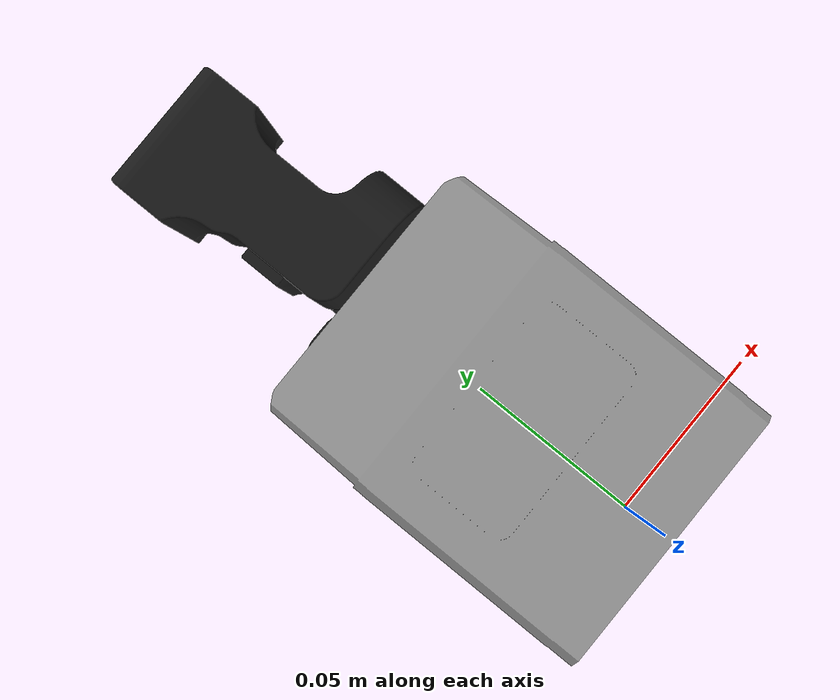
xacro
<?xml version="1.0"?>
<robot xmlns:xacro="http://ros.org/wiki/xacro" name="test_schunk_description">

  <!-- parameters -->
  <xacro:arg name="prefix" default=""/>
  <xacro:arg name="parent" default="world"/>
  <xacro:arg name="px" default="0.0"/>
  <xacro:arg name="py" default="0.0"/>
  <xacro:arg name="pz" default="0.0"/>
  <xacro:arg name="rx" default="0.0"/>
  <xacro:arg name="ry" default="0.0"/>
  <xacro:arg name="rz" default="0.0"/>
  <xacro:arg name="hardware_interface" default="hardware_interface/EffortJointInterface"/>

  <!-- includes -->
  <xacro:include filename="$(find schunk_gazebo)/urdf/gazebo_complete.xacro" />

  <!-- define world link -->
  <link name="world" />

  <!-- Gripper's main body -->
  <xacro:egk_40_gazebo
    prefix="$(arg prefix)"
    parent="$(arg parent)"
    px="$(arg px)" py="$(arg py)" pz="$(arg pz)"
    rx="$(arg rx)" ry="$(arg ry)" rz="$(arg rz)"
    hardware_interface="$(arg hardware_interface)" />

</robot>

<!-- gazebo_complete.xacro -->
<robot xmlns:xacro="http://ros.org/wiki/xacro" name="egk_40">

  <xacro:macro name="egk_40_gazebo"
    params="prefix parent px py pz rx ry rz hardware_interface launch_gazebo_ros_control_plugin='true'">

    <!-- includes -->
    <xacro:include filename="$(find schunk_description)/urdf/egk_40_complete.xacro" />
    <xacro:include filename="$(find schunk_gazebo)/urdf/transmissions.xacro" />

    <!-- Launching each component -->
    <!-- Gripper's main body -->

    <xacro:egk_40_complete
      prefix="${prefix}"
      parent="${parent}"
      px="${px}" py="${py}" pz="${pz}"
      rx="${rx}" ry="${ry}" rz="${rz}" />

    <!-- Tramsmissions -->
    <xacro:egk_40_transmission hardware_interface="${hardware_interface}" />

    <!-- Loading Gazebo plugins -->
    <xacro:if value="${launch_gazebo_ros_control_plugin}">
      <gazebo>
        <!-- It is loaded in the robot_arm.urdf.xacro -->
      </gazebo>
    </xacro:if>

    <!-- Disabling gravity -->
    <gazebo reference="finger1">
      <gravity>0</gravity>
    </gazebo>

    <gazebo reference="finger2">
      <gravity>0</gravity>
    </gazebo>

    <gazebo>
      <plugin name="gazebo_grasp_fix" filename="libgazebo_grasp_fix.so">
        <arm>
          <arm_name>gofa</arm_name>
          <palm_link> finger1 </palm_link>
          <gripper_link> leftfinger_body </gripper_link>
          <palm_link> finger2 </palm_link>
          <gripper_link> rightfinger_body </gripper_link>
        </arm>
        <forces_angle_tolerance>100</forces_angle_tolerance>
        <update_rate>4</update_rate>
        <grip_count_threshold>4</grip_count_threshold>
        <max_grip_count>8</max_grip_count>
        <release_tolerance>0.005</release_tolerance>
        <disable_collisions_on_attach>false</disable_collisions_on_attach>
        <contact_topic>__default_topic__</contact_topic>
      </plugin>
    </gazebo>

  </xacro:macro>

</robot>

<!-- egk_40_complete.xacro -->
<robot xmlns:xacro="http://ros.org/wiki/xacro" name="egk_40_complete">

  <xacro:macro name="egk_40_complete" params="prefix parent px py pz rx ry rz">

    <!-- includes -->
    <xacro:include filename="$(find schunk_description)/urdf/egk_40.xacro" />
    <xacro:include filename="$(find schunk_description)/urdf/finger.xacro" />

    <!-- Gripper's main body -->
    <xacro:egk_40 prefix="${prefix}" />

    <!-- Fingers -->
    <xacro:finger prefix="left" parent="finger1" />
    <xacro:finger prefix="right" parent="finger2" />

    <!-- Joint connecting gripper base (gripper_body) to parent -->
    <joint name="parent_to_gripper" type="fixed">
      <parent link="${parent}" />
      <child link="${prefix}gripper_body" />
      <origin xyz="${px} ${py} ${pz}" rpy="${rx} ${ry} ${rz}" />
    </joint>

    <!-- Add grasp link frame -->
    <joint name="gripper_body_to_grasp_joint" type="fixed">
      <parent link="${parent}" />
      <child  link="grasp_link" />
      <origin xyz="0.0 0.0 0.13" rpy="0.0 0.0 ${-pi / 2.0}" />
    </joint>

    <link name="grasp_link" />
  </xacro:macro>

</robot>

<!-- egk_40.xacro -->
<robot xmlns:xacro="http://ros.org/wiki/xacro" name="egk_40">

  <xacro:property name="pi" value="3.141592653589793" />

  <!-- Define a material -->

  <xacro:macro name="egk_40" params="prefix">

    <!-- Main gripper body -->
    <link name="${prefix}gripper_body">
      <visual>
        <origin xyz="0 0 0" rpy="0 0 0" />
        <geometry>
          <mesh filename="package://schunk_description/meshes/egk40/visual/egk40_body.dae"
            scale="0.001 0.001 0.001" />
        </geometry>
        <material name="Grey" />
      </visual>
      <collision>
        <origin xyz="0 0 0" rpy="0 0 0" />
        <geometry>
          <mesh filename="package://schunk_description/meshes/egk40/collision/egk40_body.stl"
            scale="0.001 0.001 0.001" />
        </geometry>
      </collision>
      <inertial>
        <origin xyz="0 0 0" rpy="0 0 0" />
        <mass value="1.5" />
        <inertia
          ixx="1.0" ixy="0.0" ixz="0.0"
          iyy="1.0" iyz="0.0"
          izz="1.0" />
      </inertial>
    </link>

    <!-- Finger 1 -->
    <link name="${prefix}finger1">
      <visual>
        <origin xyz="0 0 0" rpy="0 0 0" />
        <geometry>
          <mesh filename="package://schunk_description/meshes/egk40/visual/slider.dae"
            scale="0.001 0.001 0.001" />
        </geometry>
        <material name="Black" />
      </visual>
      <collision>
        <origin xyz="0 0 0" rpy="0 0 0" />
        <geometry>
          <mesh filename="package://schunk_description/meshes/egk40/collision/slider.stl"
            scale="0.001 0.001 0.001" />
        </geometry>
      </collision>
      <inertial>
        <origin xyz="0 0 0" rpy="0 0 0" />
        <mass value="0.3" />
        <inertia
          ixx="0.1" ixy="0.0" ixz="0.0"
          iyy="0.1" iyz="0.0"
          izz="0.1" />
      </inertial>
    </link>

    <!-- Finger 2 -->
    <link name="${prefix}finger2">
      <visual>
        <origin xyz="0 0 0" rpy="0 0 0" />
        <geometry>
          <mesh filename="package://schunk_description/meshes/egk40/visual/slider.dae"
            scale="0.001 0.001 0.001" />
        </geometry>
        <material name="Black" />
      </visual>
      <collision>
        <origin xyz="0 0 0" rpy="0 0 0" />
        <geometry>
          <mesh filename="package://schunk_description/meshes/egk40/collision/slider.stl"
            scale="0.001 0.001 0.001" />
        </geometry>
      </collision>
      <inertial>
        <origin xyz="0 0 0" rpy="0 0 0" />
        <mass value="0.3" />
        <inertia
          ixx="0.1" ixy="0.0" ixz="0.0"
          iyy="0.1" iyz="0.0"
          izz="0.1" />
      </inertial>
    </link>

    <!-- joints: main serial chain -->
    <joint name="${prefix}finger1_joint" type="prismatic">
      <parent link="${prefix}gripper_body" />
      <child link="${prefix}finger1" />
      <origin xyz="0.016 0.071 0.02" rpy="0 ${pi/2} 0" />
      <limit lower="0.0" upper="0.0415" effort="1000.0" velocity="10.0" />
    </joint>

    <joint name="${prefix}finger2_joint" type="prismatic">
      <parent link="${prefix}gripper_body" />
      <child link="${prefix}finger2" />
      <origin xyz="-0.016 0.071 -0.02" rpy="0 ${-pi/2} 0" />
      <limit lower="0.0" upper="0.0415" effort="1000.0" velocity="10.0" />
    </joint>

  </xacro:macro>

</robot>

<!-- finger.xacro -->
<robot xmlns:xacro="http://ros.org/wiki/xacro" name="finger">

  <!-- Define a material -->
  <material name="finger_black">
    <color rgba="0.1 0.1 0.1 1" />
  </material>

  <xacro:macro name="finger" params="prefix parent">

    <!-- Finger link -->
    <link name="${prefix}finger_body">
      <visual>
        <origin xyz="0 0 0" rpy="0 0 0" />
        <geometry>
          <mesh filename="package://schunk_description/meshes/fingers/visual/flat_finger.dae"
            scale="0.001 0.001 0.001" />
        </geometry>
        <material name="finger_black" />
      </visual>
      <collision>
        <origin xyz="0 0 0" rpy="0 0 0" />
        <geometry>
          <mesh
            filename="package://schunk_description/meshes/fingers/collision/flat_finger_raw.stl"
            scale="0.001 0.001 0.001" />
        </geometry>
      </collision>
      <inertial>
        <origin xyz="0 0 0" rpy="0 0 0" />
        <mass value="0.1" />
        <inertia
          ixx="0.001" ixy="0.0" ixz="0.0"
          iyy="0.001" iyz="0.0"
          izz="0.001" />
      </inertial>
    </link>

    <!-- joints: main serial chain -->
    <joint name="${prefix}finger_joint" type="fixed">
      <parent link="${parent}" />
      <child link="${prefix}finger_body" />
      <origin xyz="0.0 0.012 0.0" rpy="0 0 0" />
    </joint>

    <gazebo reference="${prefix}finger_joint">
      <disableFixedJointLumping>true</disableFixedJointLumping>
      <preserveFixedJoint>true</preserveFixedJoint>
   </gazebo>

  </xacro:macro>

</robot>
